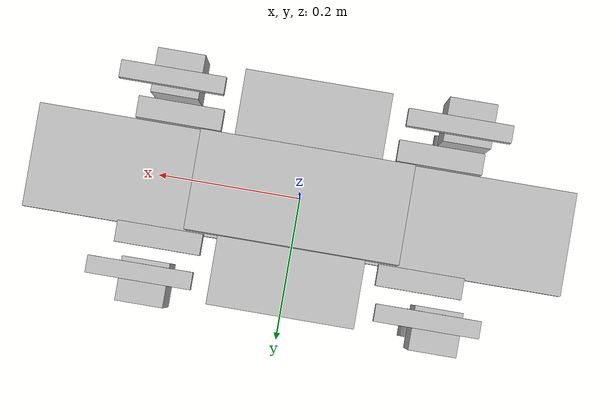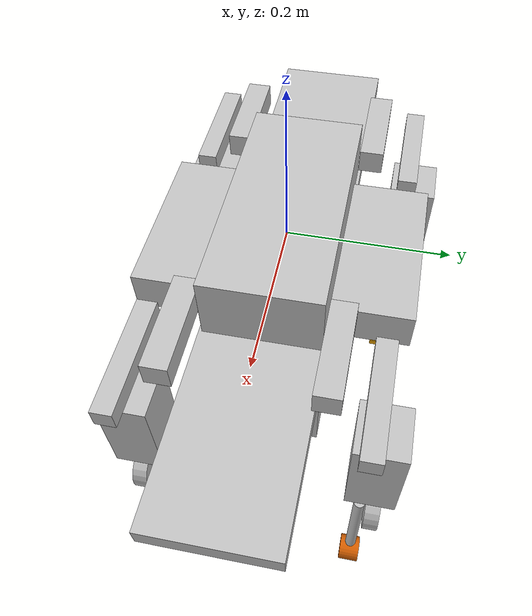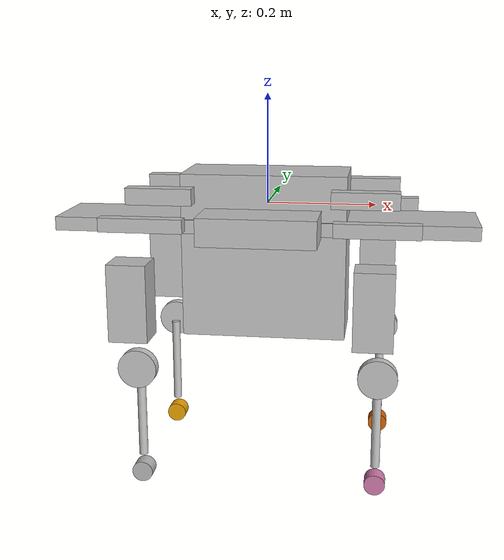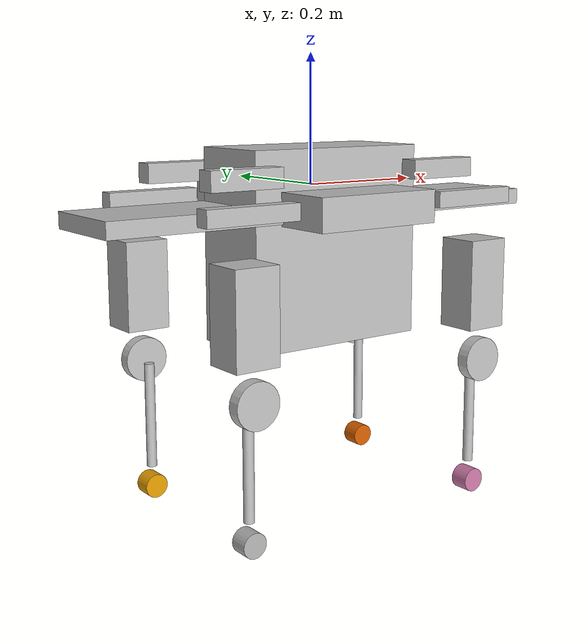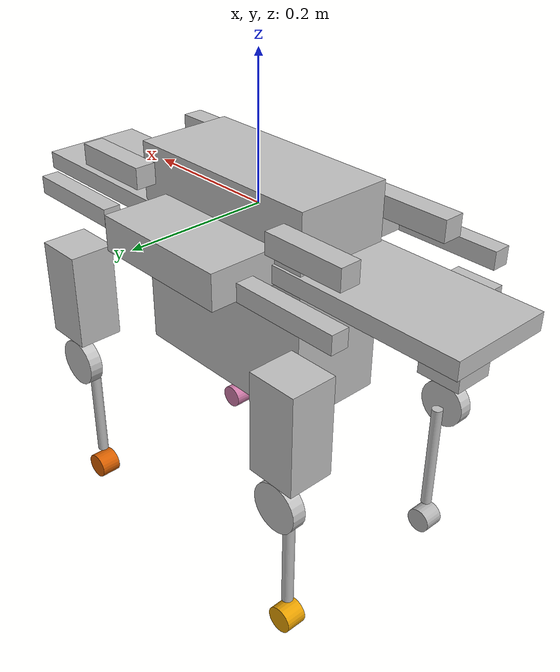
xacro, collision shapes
<?xml version="1.0"?>
<robot xmlns:xacro="http://www.ros.org/wiki/xacro"
  name="claw">
  <link
    name="base">
    <inertial>
      <origin
        xyz="0 0 0"
        rpy="0 0 0" />
      <mass
        value="6" />
      <inertia  ixx="0.0112645" ixy="0" ixz="0" iyy="0.2967625" iyz="0" izz="0.307402" />
    </inertial>

    <visual>
      <origin
        xyz="0 0 -0.035"
        rpy="0 0 0" />
      <geometry>
        <mesh
          filename="package://claw/meshes/base.dae" />
      </geometry>
      <material
        name="">
        <color
          rgba="0.75294 0.75294 0.75294 1" />
      </material>
    </visual>

    <collision>
      <origin
        xyz="0 0 -0.026"
        rpy="0 0 0" />
      <geometry>
        <box size="0.21 0.335 0.05" />
      </geometry>
    </collision>

    <collision>
      <origin
        xyz="0 0 -0.09"
        rpy="0 0 0" />
      <geometry>
        <box size="0.30 0.14 0.3" />
      </geometry>
    </collision>

        <collision>
      <origin
        xyz="0 0 -0.035"
        rpy="0 0 0" />
      <geometry>
        <box size="0.77 0.148 0.025" />
      </geometry>
    </collision>

  </link>
  <link
    name="LF_hip">
    <inertial>
      <origin
        xyz="0.13174967055832 -0.00901971527534615 0.0213366444705591"
        rpy="0 0 0" />
      <mass
        value="1" />
      <inertia  ixx="0.000451378828362012" ixy="0" ixz="0" iyy="0.0008172072744310384" iyz="0" izz="0.00099743407119124" />
    </inertial>
    <visual>
      <origin
        xyz="0 0 0"
        rpy="0 0 0" />
      <geometry>
        <mesh
          filename="package://claw/meshes/LF_hip.dae" />
      </geometry>
      <material
        name="">
        <color
          rgba="0.752941176470588 0.752941176470588 0.752941176470588 1" />
      </material>
    </visual>

    <collision>
      <origin
        xyz="0.13 0 0"
        rpy="0 0 0" />
      <geometry>
        <box size="0.15 0.025 0.025" />
      </geometry>
    </collision>

    <collision>
      <origin
        xyz="0.108 -0.052 0.043"
        rpy="0 0 0" />
      <geometry>
        <box size="0.12 0.03 0.03" />
      </geometry>
    </collision>

  </link>

  <joint
    name="LF_HAA"
    type="revolute">
    <origin
      xyz="0.0753395047601414 0.13942052488502 -0.0200209459409856"
      rpy="0 0 0" />
    <parent
      link="base" />
    <child
      link="LF_hip" />
    <axis
      xyz="1 0 0" />
    <dynamics damping="0" friction="0"/>
    <limit effort="35" velocity="21" lower="-0.35" upper="0.35"/>
  </joint>

  <link
    name="LF_thigh">
    <inertial>
      <origin
        xyz="0.00018271 0.010279 -0.079663"
        rpy="0 0 0" />
      <mass
        value="1.4" />
      <inertia  ixx="0.0003547833296860257" ixy="0" ixz="0" iyy="0.0007058333256840705" iyz="0" izz="0.0003547833296860257" />
    </inertial>
    <visual>
      <origin
        xyz="0 0 0"
        rpy="0 0 0" />
      <geometry>
        <mesh
          filename="package://claw/meshes/LF_thigh.dae" />
      </geometry>
      <material
        name="">
        <color
          rgba="0.75294 0.75294 0.75294 1" />
      </material>
    </visual>

    <collision>
      <origin
        xyz="-0.01 0.013 -0.1"
        rpy="0 0 0" />
      <geometry>
        <box size="0.07 0.065 0.14" />
      </geometry>
    </collision>

  </link>

  <joint
    name="LF_HFE"
    type="revolute">
    <origin
      xyz="0.138495495239858 0 -0.0332000000000001"
      rpy="0 0 0" />
    <parent
      link="LF_hip" />
    <child
      link="LF_thigh" />
    <axis
      xyz="0 1 0" />
    <dynamics damping="0" friction="0"/>
    <limit effort="35" velocity="21" lower="-1.2" upper="1.2"/>
  </joint>

  <link
    name="LF_calf">
    <inertial>
      <origin
        xyz="-0.000287714806849276 0.0106638871413315 -0.0604997734780131"
        rpy="0 0 0" />
      <mass
        value="0.1" />
      <inertia  ixx="8.503740948220261e-05" ixy="0" ixz="0" iyy="5.634993353343017e-05" iyz="0" izz="5.634993353343017e-05" />
    </inertial>
    <visual>
      <origin
        xyz="0 0 0"
        rpy="0 0 0" />
      <geometry>
        <mesh
          filename="package://claw/meshes/LF_calf.dae" />
      </geometry>
      <material
        name="">
        <color
          rgba="0.752941176470588 0.752941176470588 0.752941176470588 1" />
      </material>
    </visual>

    <collision>
      <origin
        xyz="0 0.02 0"
        rpy="1.57 0 0" />
      <geometry>
        <cylinder length="0.02" radius="0.035"/>
      </geometry>
    </collision>

    <collision>
      <origin
        xyz="0 0.0029 -0.09"
        rpy="0 0 0" />
      <geometry>
        <cylinder length="0.17" radius="0.008"/>
      </geometry>
    </collision>

  </link>

  <joint
    name="LF_KFE"
    type="revolute">
    <origin
      xyz="0 0 -0.22449657290337"
      rpy="0 0 0" />
    <parent
      link="LF_thigh" />
    <child
      link="LF_calf" />
    <axis
      xyz="0 1 0" />
    <dynamics damping="0" friction="0"/>
    <limit effort="35" velocity="21" lower="-2.45" upper="0"/>
  </joint>

  <link
    name="RF_hip">
    <inertial>
      <origin
        xyz="0.131752425088665 0.00909498645208687 0.0213386564682049"
        rpy="0 0 0" />
      <mass
        value="1" />
      <inertia  ixx="0.000451378828362012" ixy="0" ixz="0" iyy="0.0008172072744310384" iyz="0" izz="0.00099743407119124" />
    </inertial>
    <visual>
      <origin
        xyz="0 0 0"
        rpy="0 0 0" />
      <geometry>
        <mesh
          filename="package://claw/meshes/RF_hip.dae" />
      </geometry>
      <material
        name="">
        <color
          rgba="0.752941176470588 0.752941176470588 0.752941176470588 1" />
      </material>
    </visual>

    <collision>
      <origin
        xyz="0.13 0 0"
        rpy="0 0 0" />
      <geometry>
        <box size="0.15 0.025 0.025" />
      </geometry>
    </collision>

        <collision>
      <origin
        xyz="0.108 0.052 0.043"
        rpy="0 0 0" />
      <geometry>
        <box size="0.12 0.03 0.03" />
      </geometry>
    </collision>

  </link>

  <joint
    name="RF_HAA"
    type="revolute">
    <origin
      xyz="0.0753395047601412 -0.13952052488502 -0.0200212507695249"
      rpy="0 0 0" />
    <parent
      link="base" />
    <child
      link="RF_hip" />
    <axis
      xyz="1 0 0" />
    <dynamics damping="0" friction="0"/>
    <limit effort="35" velocity="21" lower="-0.35" upper="0.35"/>
  </joint>

  <link
    name="RF_thigh">
    <inertial>
      <origin
        xyz="-7.93319223516831E-05 -0.0101787998953494 -0.0796625362735511"
        rpy="0 0 0" />
      <mass
        value="1.4" />
      <inertia  ixx="0.0003547833296860257" ixy="0" ixz="0" iyy="0.0007058333256840705" iyz="0" izz="0.0003547833296860257" />
    </inertial>
    <visual>
      <origin
        xyz="0 0 0"
        rpy="0 0 0" />
      <geometry>
        <mesh
          filename="package://claw/meshes/RF_thigh.dae" />
      </geometry>
      <material
        name="">
        <color
          rgba="0.752941176470588 0.752941176470588 0.752941176470588 1" />
      </material>
    </visual>

    <collision>
      <origin
        xyz="-0.01 -0.013 -0.1"
        rpy="0 0 0" />
      <geometry>
        <box size="0.07 0.065 0.14" />
      </geometry>
    </collision>

  </link>

  <joint
    name="RF_HFE"
    type="revolute">
    <origin
      xyz="0.138495495239859 0 -0.0331999999999995"
      rpy="0 0 0" />
    <parent
      link="RF_hip" />
    <child
      link="RF_thigh" />
    <axis
      xyz="0 1 0" />
    <dynamics damping="0" friction="0"/>
    <limit effort="35" velocity="21" lower="-1.2" upper="1.2"/>
  </joint>

  <link
    name="RF_calf">
    <inertial>
      <origin
        xyz="-0.000287481930574623 -0.0105530359423697 -0.0604998008854242"
        rpy="0 0 0" />
      <mass
        value="0.1" />
      <inertia  ixx="8.503740948220261e-05" ixy="0" ixz="0" iyy="5.634993353343017e-05" iyz="0" izz="5.634993353343017e-05" />
    </inertial>
    <visual>
      <origin
        xyz="0 0 0"
        rpy="0 0 0" />
      <geometry>
        <mesh
          filename="package://claw/meshes/RF_calf.dae" />
      </geometry>
      <material
        name="">
        <color
          rgba="0.752941176470588 0.752941176470588 0.752941176470588 1" />
      </material>
    </visual>

    <collision>
      <origin
        xyz="0 -0.02 0"
        rpy="1.57 0 0" />
      <geometry>
        <cylinder length="0.02" radius="0.035"/>
      </geometry>
    </collision>

    <collision>
      <origin
        xyz="0 -0.0029 -0.09"
        rpy="0 0 0" />
      <geometry>
        <cylinder length="0.17" radius="0.008"/>
      </geometry>
    </collision>

  </link>

  <joint
    name="RF_KFE"
    type="revolute">
    <origin
      xyz="0 0 -0.22449657290337"
      rpy="0 0 0" />
    <parent
      link="RF_thigh" />
    <child
      link="RF_calf" />
    <axis
      xyz="0 1 0" />
    <dynamics damping="0" friction="0"/>
    <limit effort="35" velocity="21" lower="-2.45" upper="0"/>
  </joint>

  <link
    name="RH_hip">
    <inertial>
      <origin
        xyz="-0.131807126386722 0.00909513342303045 0.0213440413067441"
        rpy="0 0 0" />
      <mass
        value="1" />
      <inertia  ixx="0.000451378828362012" ixy="0" ixz="0" iyy="0.0008172072744310384" iyz="0" izz="0.00099743407119124" />
    </inertial>
    <visual>
      <origin
        xyz="0 0 0"
        rpy="0 0 0" />
      <geometry>
        <mesh
          filename="package://claw/meshes/RH_hip.dae" />
      </geometry>
      <material
        name="">
        <color
          rgba="0.752941176470588 0.752941176470588 0.752941176470588 1" />
      </material>
    </visual>

    <collision>
      <origin
        xyz="-0.13 0 0"
        rpy="0 0 0" />
      <geometry>
        <box size="0.15 0.025 0.025" />
      </geometry>
    </collision>

        <collision>
      <origin
        xyz="-0.108 0.052 0.043"
        rpy="0 0 0" />
      <geometry>
        <box size="0.12 0.03 0.03" />
      </geometry>
    </collision>

  </link>

  <joint
    name="RH_HAA"
    type="revolute">
    <origin
      xyz="-0.0753349999999998 -0.13952052488502 -0.0200212507695242"
      rpy="0 0 0" />
    <parent
      link="base" />
    <child
      link="RH_hip" />
    <axis
      xyz="1 0 0" />
    <dynamics damping="0" friction="0"/>
    <limit effort="35" velocity="21" lower="-0.35" upper="0.35"/>
  </joint>

  <link
    name="RH_thigh">
    <inertial>
      <origin
        xyz="-7.93319139673343E-05 -0.0101787999056125 -0.0796625362378313"
        rpy="0 0 0" />
      <mass
        value="1.4" />
      <inertia  ixx="0.0003547833296860257" ixy="0" ixz="0" iyy="0.0007058333256840705" iyz="0" izz="0.0003547833296860257" />
    </inertial>
    <visual>
      <origin
        xyz="0 0 0"
        rpy="0 0 0" />
      <geometry>
        <mesh
          filename="package://claw/meshes/RH_thigh.dae" />
      </geometry>
      <material
        name="">
        <color
          rgba="0.752941176470588 0.752941176470588 0.752941176470588 1" />
      </material>
    </visual>

    <collision>
      <origin
        xyz="-0.01 -0.013 -0.1"
        rpy="0 0 0" />
      <geometry>
        <box size="0.07 0.065 0.14" />
      </geometry>
    </collision>

  </link>

  <joint
    name="RH_HFE"
    type="revolute">
    <origin
      xyz="-0.13883 0 -0.0332000000000001"
      rpy="0 0 0" />
    <parent
      link="RH_hip" />
    <child
      link="RH_thigh" />
    <axis
      xyz="0 1 0" />
    <dynamics damping="0" friction="0"/>
    <limit effort="35" velocity="21" lower="-1.2" upper="1.2"/>
  </joint>

  <link
    name="RH_calf">
    <inertial>
      <origin
        xyz="-0.000287472995257498 -0.0105530306508532 -0.0604997748556347"
        rpy="0 0 0" />
      <mass
        value="0.1" />
      <inertia  ixx="8.503740948220261e-05" ixy="0" ixz="0" iyy="5.634993353343017e-05" iyz="0" izz="5.634993353343017e-05" />
    </inertial>
    <visual>
      <origin
        xyz="0 0 0"
        rpy="0 0 0" />
      <geometry>
        <mesh
          filename="package://claw/meshes/RH_calf.dae" />
      </geometry>
      <material
        name="">
        <color
          rgba="0.752941176470588 0.752941176470588 0.752941176470588 1" />
      </material>
    </visual>

    <collision>
      <origin
        xyz="0 -0.02 0"
        rpy="1.57 0 0" />
      <geometry>
        <cylinder length="0.02" radius="0.035"/>
      </geometry>
    </collision>

    <collision>
      <origin
        xyz="0 -0.0029 -0.09"
        rpy="0 0 0" />
      <geometry>
        <cylinder length="0.17" radius="0.008"/>
      </geometry>
    </collision>

  </link>

  <joint
    name="RH_KFE"
    type="revolute">
    <origin
      xyz="0 0 -0.22449657290337"
      rpy="0 0 0" />
    <parent
      link="RH_thigh" />
    <child
      link="RH_calf" />
    <axis
      xyz="0 1 0" />
    <dynamics damping="0" friction="0"/>
    <limit effort="35" velocity="21" lower="-2.45" upper="0"/>
  </joint>

  <link
    name="LH_hip">
    <inertial>
      <origin
        xyz="-0.131815401985864 -0.00901976754062939 0.0213456946368896"
        rpy="0 0 0" />
      <mass
        value="1" />
      <inertia  ixx="0.000451378828362012" ixy="0" ixz="0" iyy="0.0008172072744310384" iyz="0" izz="0.00099743407119124" />
    </inertial>
    <visual>
      <origin
        xyz="0 0 0"
        rpy="0 0 0" />
      <geometry>
        <mesh
          filename="package://claw/meshes/LH_hip.dae" />
      </geometry>
      <material
        name="">
        <color
          rgba="0.752941176470588 0.752941176470588 0.752941176470588 1" />
      </material>
    </visual>

    <collision>
      <origin
        xyz="-0.13 0 0"
        rpy="0 0 0" />
      <geometry>
        <box size="0.15 0.025 0.025" />
      </geometry>
    </collision>

        <collision>
      <origin
        xyz="-0.108 -0.052 0.043"
        rpy="0 0 0" />
      <geometry>
        <box size="0.12 0.03 0.03" />
      </geometry>
    </collision>

  </link>

  <joint
    name="LH_HAA"
    type="revolute">
    <origin
      xyz="-0.0753349999999994 0.139420524885019 -0.0200209459409853"
      rpy="0 0 0" />
    <parent
      link="base" />
    <child
      link="LH_hip" />
    <axis
      xyz="1 0 0" />
    <dynamics damping="0" friction="0"/>
    <limit effort="35" velocity="21" lower="-0.35" upper="0.35"/>
  </joint>

  <link
    name="LH_thigh">
    <inertial>
      <origin
        xyz="0.000182705245315218 0.0102788070976663 -0.0796625722288096"
        rpy="0 0 0" />
      <mass
        value="1.4" />
      <inertia  ixx="0.0003547833296860257" ixy="0" ixz="0" iyy="0.0007058333256840705" iyz="0" izz="0.0003547833296860257" />
    </inertial>
    <visual>
      <origin
        xyz="0 0 0"
        rpy="0 0 0" />
      <geometry>
        <mesh
          filename="package://claw/meshes/LH_thigh.dae" />
      </geometry>
      <material
        name="">
        <color
          rgba="0.752941176470588 0.752941176470588 0.752941176470588 1" />
      </material>
    </visual>

    <collision>
      <origin
        xyz="-0.01 0.013 -0.1"
        rpy="0 0 0" />
      <geometry>
        <box size="0.07 0.065 0.14" />
      </geometry>
    </collision>

  </link>

  <joint
    name="LH_HFE"
    type="revolute">
    <origin
      xyz="-0.13883 0 -0.0332000000000001"
      rpy="0 0 0" />
    <parent
      link="LH_hip" />
    <child
      link="LH_thigh" />
    <axis
      xyz="0 1 0" />
    <dynamics damping="0" friction="0"/>
    <limit effort="35" velocity="21" lower="-1.2" upper="1.2"/>
  </joint>

  <link
    name="LH_calf">
    <inertial>
      <origin
        xyz="-0.000287712355231284 0.0106638796715953 -0.0604997404568841"
        rpy="0 0 0" />
      <mass
        value="0.1" />
      <inertia  ixx="8.503740948220261e-05" ixy="0" ixz="0" iyy="5.634993353343017e-05" iyz="0" izz="5.634993353343017e-05" />
    </inertial>
    <visual>
      <origin
        xyz="0 0 0"
        rpy="0 0 0" />
      <geometry>
        <mesh
          filename="package://claw/meshes/LH_calf.dae" />
      </geometry>
      <material
        name="">
        <color
          rgba="0.752941176470588 0.752941176470588 0.752941176470588 1" />
      </material>
    </visual>

    <collision>
      <origin
        xyz="0 0.02 0"
        rpy="1.57 0 0" />
      <geometry>
        <cylinder length="0.02" radius="0.035"/>
      </geometry>
    </collision>

    <collision>
      <origin
        xyz="0 0.0029 -0.09"
        rpy="0 0 0" />
      <geometry>
        <cylinder length="0.17" radius="0.008"/>
      </geometry>
    </collision>

  </link>

  <joint
    name="LH_KFE"
    type="revolute">
    <origin
      xyz="0 0 -0.22449657290337"
      rpy="0 0 0" />
    <parent
      link="LH_thigh" />
    <child
      link="LH_calf" />
    <axis
      xyz="0 1 0" />
    <dynamics damping="0" friction="0"/>
    <limit effort="35" velocity="5" lower="-2.45" upper="0"/>
  </joint>

<joint name="LF_foot_fixed" type="fixed">
    <origin rpy="0 0 0" xyz="0 0 -0.2057"/>
    <parent link="LF_calf"/>
    <child link="LF_FOOT"/>
</joint>

<link name="LF_FOOT">
    <collision>
      <origin
        xyz="0 0.0029 0"
        rpy="1.57 0 0" />
      <geometry>
        <cylinder length="0.03" radius="0.019"/>
      </geometry>
    </collision>

    <inertial>
      <mass value="0.05"/>
      <inertia  ixx="8.2625e-06" ixy="0" ixz="0" iyy="8.2625e-06" iyz="0" izz="9.025e-06" />
    </inertial>
</link>

<joint name="RF_foot_fixed" type="fixed">
    <origin rpy="0 0 0" xyz="0 0 -0.2057"/>
    <parent link="RF_calf"/>
    <child link="RF_FOOT"/>
</joint>

<link name="RF_FOOT">
    <collision>
      <origin
        xyz="0 -0.0029 0"
        rpy="1.57 0 0" />
      <geometry>
        <cylinder length="0.03" radius="0.019"/>
      </geometry>
    </collision>

    <inertial>
      <mass value="0.05"/>
      <inertia  ixx="8.2625e-06" ixy="0" ixz="0" iyy="8.2625e-06" iyz="0" izz="9.025e-06" />
    </inertial>
</link>

<joint name="RH_foot_fixed" type="fixed">
    <origin rpy="0 0 0" xyz="0 0 -0.2057"/>
    <parent link="RH_calf"/>
    <child link="RH_FOOT"/>
</joint>

<link name="RH_FOOT">
    <collision>
      <origin
        xyz="0 -0.0029 0"
        rpy="1.57 0 0" />
      <geometry>
        <cylinder length="0.03" radius="0.019"/>
      </geometry>
    </collision>

    <inertial>
      <mass value="0.05"/>
      <inertia  ixx="8.2625e-06" ixy="0" ixz="0" iyy="8.2625e-06" iyz="0" izz="9.025e-06" />
    </inertial>
</link>

<joint name="LH_foot_fixed" type="fixed">
    <origin rpy="0 0 0" xyz="0 0 -0.2057"/>
    <parent link="LH_calf"/>
    <child link="LH_FOOT"/>
</joint>

<link name="LH_FOOT">
    <collision>
      <origin
        xyz="0 0.0029 0"
        rpy="1.57 0 0" />
      <geometry>
        <cylinder length="0.03" radius="0.019"/>
      </geometry>
    </collision>

    <inertial>
      <mass value="0.05"/>
      <inertia  ixx="8.2625e-06" ixy="0" ixz="0" iyy="8.2625e-06" iyz="0" izz="9.025e-06" />
    </inertial>
</link>

<gazebo reference="LF_foot_fixed">
  <disableFixedJointLumping>true</disableFixedJointLumping>
</gazebo>

<gazebo reference="LH_foot_fixed">
  <disableFixedJointLumping>true</disableFixedJointLumping>
</gazebo>

<gazebo reference="RF_foot_fixed">
  <disableFixedJointLumping>true</disableFixedJointLumping>
</gazebo>

<gazebo reference="RH_foot_fixed">
  <disableFixedJointLumping>true</disableFixedJointLumping>
</gazebo>

<gazebo reference="LF_FOOT">
    <mu1>0.6</mu1>
    <mu2>0.6</mu2>
    <self_collide>1</self_collide>
    <kp value="1000000.0"/>
    <kd value="100.0"/>
</gazebo>

<gazebo reference="LH_FOOT">
    <mu1>0.6</mu1>
    <mu2>0.6</mu2>
    <self_collide>1</self_collide>
    <kp value="1000000.0"/>
    <kd value="100.0"/>
</gazebo>

<gazebo reference="RF_FOOT">
    <mu1>0.6</mu1>
    <mu2>0.6</mu2>
    <self_collide>1</self_collide>
    <kp value="1000000.0"/>
    <kd value="100.0"/>
</gazebo>

<gazebo reference="RH_FOOT">
    <mu1>0.6</mu1>
    <mu2>0.6</mu2>
    <self_collide>1</self_collide>
    <kp value="1000000.0"/>
    <kd value="100.0"/>
</gazebo>

<!-- IMU -->
<joint name="imu_joint" type="fixed">
    <origin xyz="0 0 0" rpy="0 0 0"/>
    <parent link="base"/>
    <child link="imu"/>
</joint>
<link name="imu">
    <inertial>
        <mass value="0.01"/>
        <origin rpy="0 0 0" xyz="0 0 0"/>
        <inertia ixx="0.000001" ixy="0" ixz="0" iyy="0.000001" iyz="0" izz="0.000001"/>
    </inertial>
    <visual>
        <origin rpy="0 0 0" xyz="0 0 0"/>
        <geometry>
            <box size="0.015 0.015 0.004"/>
        </geometry>
    </visual>
</link>

<gazebo reference="imu_joint">
    <disableFixedJointLumping>true</disableFixedJointLumping>
</gazebo>

<!-- TRANSMISSION -->
<transmission name="LF_HAA_tran">
    <type>transmission_interface/SimpleTransmission</type>
    <joint name="LF_HAA">
        <hardwareInterface>hardware_interface/EffortJointInterface</hardwareInterface>
    </joint>
    <actuator name="LF_HAA_motor">
        <hardwareInterface>hardware_interface/EffortJointInterface</hardwareInterface>
        <mechanicalReduction>1</mechanicalReduction>
    </actuator>
</transmission>

<transmission name="LF_HFE_tran">
    <type>transmission_interface/SimpleTransmission</type>
    <joint name="LF_HFE">
        <hardwareInterface>hardware_interface/EffortJointInterface</hardwareInterface>
    </joint>
    <actuator name="LF_HFE_motor">
        <hardwareInterface>hardware_interface/EffortJointInterface</hardwareInterface>
        <mechanicalReduction>1</mechanicalReduction>
    </actuator>
</transmission>

<transmission name="LF_KFE_tran">
    <type>transmission_interface/SimpleTransmission</type>
    <joint name="LF_KFE">
        <hardwareInterface>hardware_interface/EffortJointInterface</hardwareInterface>
    </joint>
    <actuator name="LF_KFE_motor">
        <hardwareInterface>hardware_interface/EffortJointInterface</hardwareInterface>
        <mechanicalReduction>1</mechanicalReduction>
    </actuator>
</transmission>

<transmission name="RF_HAA_tran">
    <type>transmission_interface/SimpleTransmission</type>
    <joint name="RF_HAA">
        <hardwareInterface>hardware_interface/EffortJointInterface</hardwareInterface>
    </joint>
    <actuator name="RF_HAA_motor">
        <hardwareInterface>hardware_interface/EffortJointInterface</hardwareInterface>
        <mechanicalReduction>1</mechanicalReduction>
    </actuator>
</transmission>

<transmission name="RF_HFE_tran">
    <type>transmission_interface/SimpleTransmission</type>
    <joint name="RF_HFE">
        <hardwareInterface>hardware_interface/EffortJointInterface</hardwareInterface>
    </joint>
    <actuator name="RF_HFE_motor">
        <hardwareInterface>hardware_interface/EffortJointInterface</hardwareInterface>
        <mechanicalReduction>1</mechanicalReduction>
    </actuator>
</transmission>

<transmission name="RF_KFE_tran">
    <type>transmission_interface/SimpleTransmission</type>
    <joint name="RF_KFE">
        <hardwareInterface>hardware_interface/EffortJointInterface</hardwareInterface>
    </joint>
    <actuator name="RF_KFE_motor">
        <hardwareInterface>hardware_interface/EffortJointInterface</hardwareInterface>
        <mechanicalReduction>1</mechanicalReduction>
    </actuator>
</transmission>

<transmission name="RH_HAA_tran">
    <type>transmission_interface/SimpleTransmission</type>
    <joint name="RH_HAA">
        <hardwareInterface>hardware_interface/EffortJointInterface</hardwareInterface>
    </joint>
    <actuator name="RH_HAA_motor">
        <hardwareInterface>hardware_interface/EffortJointInterface</hardwareInterface>
        <mechanicalReduction>1</mechanicalReduction>
    </actuator>
</transmission>

<transmission name="RH_HFE_tran">
    <type>transmission_interface/SimpleTransmission</type>
    <joint name="RH_HFE">
        <hardwareInterface>hardware_interface/EffortJointInterface</hardwareInterface>
    </joint>
    <actuator name="RH_HFE_motor">
        <hardwareInterface>hardware_interface/EffortJointInterface</hardwareInterface>
        <mechanicalReduction>1</mechanicalReduction>
    </actuator>
</transmission>

<transmission name="RH_KFE_tran">
    <type>transmission_interface/SimpleTransmission</type>
    <joint name="RH_KFE">
        <hardwareInterface>hardware_interface/EffortJointInterface</hardwareInterface>
    </joint>
    <actuator name="RH_KFE_motor">
        <hardwareInterface>hardware_interface/EffortJointInterface</hardwareInterface>
        <mechanicalReduction>1</mechanicalReduction>
    </actuator>
</transmission>

<transmission name="LH_HAA_tran">
    <type>transmission_interface/SimpleTransmission</type>
    <joint name="LH_HAA">
        <hardwareInterface>hardware_interface/EffortJointInterface</hardwareInterface>
    </joint>
    <actuator name="LH_HAA_motor">
        <hardwareInterface>hardware_interface/EffortJointInterface</hardwareInterface>
        <mechanicalReduction>1</mechanicalReduction>
    </actuator>
</transmission>

<transmission name="LH_HFE_tran">
    <type>transmission_interface/SimpleTransmission</type>
    <joint name="LH_HFE">
        <hardwareInterface>hardware_interface/EffortJointInterface</hardwareInterface>
    </joint>
    <actuator name="LH_HFE_motor">
        <hardwareInterface>hardware_interface/EffortJointInterface</hardwareInterface>
        <mechanicalReduction>1</mechanicalReduction>
    </actuator>
</transmission>

<transmission name="LH_KFE_tran">
    <type>transmission_interface/SimpleTransmission</type>
    <joint name="LH_KFE">
        <hardwareInterface>hardware_interface/EffortJointInterface</hardwareInterface>
    </joint>
    <actuator name="LH_KFE_motor">
        <hardwareInterface>hardware_interface/EffortJointInterface</hardwareInterface>
        <mechanicalReduction>1</mechanicalReduction>
    </actuator>
</transmission>

<!-- PLUGINS -->
<gazebo>
    <plugin name="gazebo_ros_control" filename="liblegged_hw_sim.so">
        <robotNamespace>/</robotNamespace>
        <robotParam>legged_robot_description</robotParam>
        <robotSimType>legged_gazebo/LeggedHWSim</robotSimType>
    </plugin>
</gazebo>

<gazebo>
    <plugin name="p3d_base_controller" filename="libgazebo_ros_p3d.so">
        <alwaysOn>true</alwaysOn>
        <updateRate>1000.0</updateRate>
        <bodyName>base</bodyName>
        <topicName>ground_truth/state</topicName>
        <gaussianNoise>0</gaussianNoise>
        <frameName>world</frameName>
        <xyzOffsets>0 0 0</xyzOffsets>
        <rpyOffsets>0 0 0</rpyOffsets>
    </plugin>
</gazebo>

</robot>
